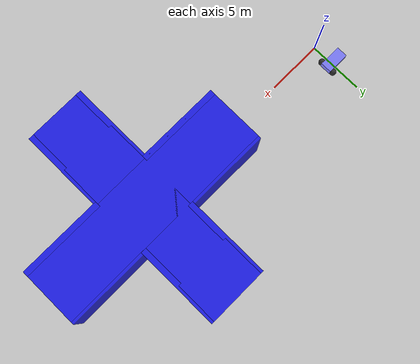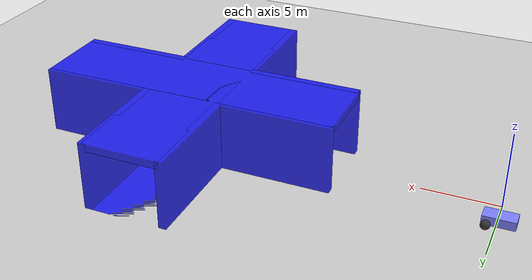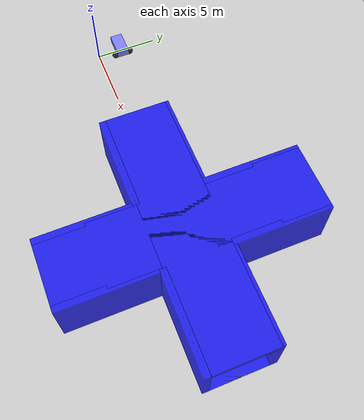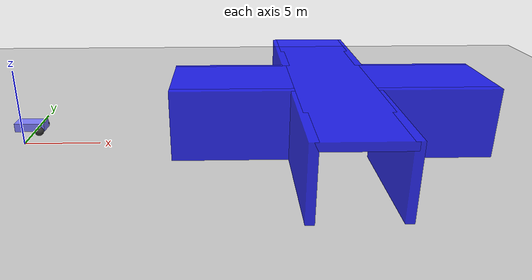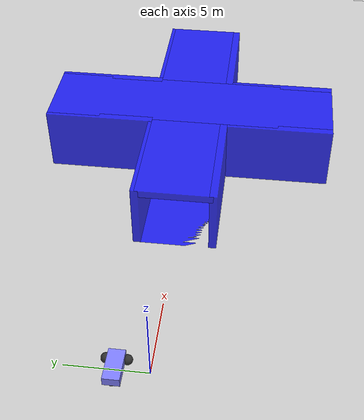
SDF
<sdf version="1.6">
 <world name="default">
  <model name="ground_plane">
   <static>true</static>
   <pose>30 0 0 0 0 0</pose>
   <link name="link">
    <collision name="collision">
     <pose>0 0 -5 0 0 0</pose>
     <geometry><box><size>100 100 10</size></box></geometry>
    </collision>
    <visual name="visual">
     <pose>0 0 -5 0 0 0</pose>
     <geometry><box><size>100 100 10</size></box></geometry>
     <material>
      <ambient>0.8 0.8 0.8 1</ambient>
      <diffuse>0.8 0.8 0.8 1</diffuse>
      <specular>0.8 0.8 0.8 1</specular>
      <emissive>0.8 0.8 0.8 1</emissive>
     </material>
    </visual>
   </link>
  </model>
  <model name="tunnel_tile_1_tile_2">
   <pose>20 0 0 0 0 -1.5707963267948966</pose>
   <static>true</static>
   <link name="link">
    <collision name="collision_0">
     <pose>0 0 -0.25 0 0 0</pose>
     <geometry><box><size>5 20 0.5</size></box></geometry>
    </collision>
    <visual name="visual_0">
     <pose>0 0 -0.25 0 0 0</pose>
     <geometry><box><size>5 20 0.5</size></box></geometry>
     <material><ambient>0 0 1 0.8</ambient><diffuse>0 0 1 0.8</diffuse><specular>1 1 1 0.8</specular></material>
    </visual>
    <collision name="collision_1">
     <pose>0 0 4.25 0 0 0</pose>
     <geometry><box><size>5 20 0.5</size></box></geometry>
    </collision>
    <visual name="visual_1">
     <pose>0 0 4.25 0 0 0</pose>
     <geometry><box><size>5 20 0.5</size></box></geometry>
     <material><ambient>0 0 1 0.8</ambient><diffuse>0 0 1 0.8</diffuse><specular>1 1 1 0.8</specular></material>
    </visual>
    <collision name="collision_2">
     <pose>0 0 -0.25 0 0 1.57</pose>
     <geometry><box><size>5 20 0.5</size></box></geometry>
    </collision>
    <visual name="visual_2">
     <pose>0 0 -0.25 0 0 1.57</pose>
     <geometry><box><size>5 20 0.5</size></box></geometry>
     <material><ambient>0 0 1 0.8</ambient><diffuse>0 0 1 0.8</diffuse><specular>1 1 1 0.8</specular></material>
    </visual>
    <collision name="collision_3">
     <pose>0 0 4.25 0 0 1.57</pose>
     <geometry><box><size>5 20 0.5</size></box></geometry>
    </collision>
    <visual name="visual_3">
     <pose>0 0 4.25 0 0 1.57</pose>
     <geometry><box><size>5 20 0.5</size></box></geometry>
     <material><ambient>0 0 1 0.8</ambient><diffuse>0 0 1 0.8</diffuse><specular>1 1 1 0.8</specular></material>
    </visual>
    <collision name="collision_4">
     <pose>-2.5 6.25 2 3.14 -1.57 0</pose>
     <geometry><box><size>5 7.5 0.5</size></box></geometry>
    </collision>
    <visual name="visual_4">
     <pose>-2.5 6.25 2 3.14 -1.57 0</pose>
     <geometry><box><size>5 7.5 0.5</size></box></geometry>
     <material><ambient>0 0 1 0.8</ambient><diffuse>0 0 1 0.8</diffuse><specular>1 1 1 0.8</specular></material>
    </visual>
    <collision name="collision_5">
     <pose>2.5 6.25 2 3.14 -1.57 0</pose>
     <geometry><box><size>5 7.5 0.5</size></box></geometry>
    </collision>
    <visual name="visual_5">
     <pose>2.5 6.25 2 3.14 -1.57 0</pose>
     <geometry><box><size>5 7.5 0.5</size></box></geometry>
     <material><ambient>0 0 1 0.8</ambient><diffuse>0 0 1 0.8</diffuse><specular>1 1 1 0.8</specular></material>
    </visual>
    <collision name="collision_6">
     <pose>-2.5 -6.25 2 3.14 -1.57 0</pose>
     <geometry><box><size>5 7.5 0.5</size></box></geometry>
    </collision>
    <visual name="visual_6">
     <pose>-2.5 -6.25 2 3.14 -1.57 0</pose>
     <geometry><box><size>5 7.5 0.5</size></box></geometry>
     <material><ambient>0 0 1 0.8</ambient><diffuse>0 0 1 0.8</diffuse><specular>1 1 1 0.8</specular></material>
    </visual>
    <collision name="collision_7">
     <pose>2.5 -6.25 2 3.14 -1.57 0</pose>
     <geometry><box><size>5 7.5 0.5</size></box></geometry>
    </collision>
    <visual name="visual_7">
     <pose>2.5 -6.25 2 3.14 -1.57 0</pose>
     <geometry><box><size>5 7.5 0.5</size></box></geometry>
     <material><ambient>0 0 1 0.8</ambient><diffuse>0 0 1 0.8</diffuse><specular>1 1 1 0.8</specular></material>
    </visual>
    <collision name="collision_8">
     <pose>6.25 2.5 2 1.57 1.57 0</pose>
     <geometry><box><size>5 7.5 0.5</size></box></geometry>
    </collision>
    <visual name="visual_8">
     <pose>6.25 2.5 2 1.57 1.57 0</pose>
     <geometry><box><size>5 7.5 0.5</size></box></geometry>
     <material><ambient>0 0 1 0.8</ambient><diffuse>0 0 1 0.8</diffuse><specular>1 1 1 0.8</specular></material>
    </visual>
    <collision name="collision_9">
     <pose>-6.25 2.5 2 1.57 1.57 0</pose>
     <geometry><box><size>5 7.5 0.5</size></box></geometry>
    </collision>
    <visual name="visual_9">
     <pose>-6.25 2.5 2 1.57 1.57 0</pose>
     <geometry><box><size>5 7.5 0.5</size></box></geometry>
     <material><ambient>0 0 1 0.8</ambient><diffuse>0 0 1 0.8</diffuse><specular>1 1 1 0.8</specular></material>
    </visual>
    <collision name="collision_10">
     <pose>6.25 -2.5 2 1.57 1.57 0</pose>
     <geometry><box><size>5 7.5 0.5</size></box></geometry>
    </collision>
    <visual name="visual_10">
     <pose>6.25 -2.5 2 1.57 1.57 0</pose>
     <geometry><box><size>5 7.5 0.5</size></box></geometry>
     <material><ambient>0 0 1 0.8</ambient><diffuse>0 0 1 0.8</diffuse><specular>1 1 1 0.8</specular></material>
    </visual>
    <collision name="collision_11">
     <pose>-6.25 -2.5 2 1.57 1.57 0</pose>
     <geometry><box><size>5 7.5 0.5</size></box></geometry>
    </collision>
    <visual name="visual_11">
     <pose>-6.25 -2.5 2 1.57 1.57 0</pose>
     <geometry><box><size>5 7.5 0.5</size></box></geometry>
     <material><ambient>0 0 1 0.8</ambient><diffuse>0 0 1 0.8</diffuse><specular>1 1 1 0.8</specular></material>
    </visual>
   </link>
  </model>
  <model name="vehicle_blue">
   <pose>0 2 0.325 0 0 0</pose>
   <link name="chassis">
    <pose>-0.151427 -0 0.175 0 -0 0</pose>
    <inertial>
     <mass>1.14395</mass>
     <inertia>
      <ixx>0.126164</ixx>
      <ixy>0</ixy>
      <ixz>0</ixz>
      <iyy>0.416519</iyy>
      <iyz>0</iyz>
      <izz>0.481014</izz>
     </inertia>
    </inertial>
    <visual name="visual">
     <geometry><box><size>2.01142 1 0.568726</size></box></geometry>
     <material>
      <ambient>0.5 0.5 1.0 1</ambient>
      <diffuse>0.5 0.5 1.0 1</diffuse>
      <specular>0.5 0.5 1.0 1</specular>
      <emissive>0.5 0.5 1.0 1</emissive>
     </material>
    </visual>
    <collision name="collision"><geometry><box><size>2.01142 1 0.568726</size></box></geometry></collision>
   </link>
   <link name="left_wheel">
    <pose>0.554283 0.625029 -0.025 -1.5707 0 0</pose>
    <inertial>
     <mass>2</mass>
     <inertia><ixx>0.145833</ixx><ixy>0</ixy><ixz>0</ixz><iyy>0.145833</iyy><iyz>0</iyz><izz>0.125</izz></inertia>
    </inertial>
    <visual name="visual">
     <geometry><sphere><radius>0.3</radius></sphere></geometry>
     <material>
      <ambient>0.2 0.2 0.2 1</ambient>
      <diffuse>0.2 0.2 0.2 1</diffuse>
      <specular>0.2 0.2 0.2 1</specular>
      <emissive>0.2 0.2 0.2 1</emissive>
     </material>
    </visual>
    <collision name="collision"><geometry><sphere><radius>0.3</radius></sphere></geometry></collision>
   </link>
   <link name="right_wheel">
    <pose>0.554282 -0.625029 -0.025 -1.5707 0 0</pose>
    <inertial>
     <mass>2</mass>
     <inertia><ixx>0.145833</ixx><ixy>0</ixy><ixz>0</ixz><iyy>0.145833</iyy><iyz>0</iyz><izz>0.125</izz></inertia>
    </inertial>
    <visual name="visual">
     <geometry><sphere><radius>0.3</radius></sphere></geometry>
     <material>
      <ambient>0.2 0.2 0.2 1</ambient>
      <diffuse>0.2 0.2 0.2 1</diffuse>
      <specular>0.2 0.2 0.2 1</specular>
      <emissive>0.2 0.2 0.2 1</emissive>
     </material>
    </visual>
    <collision name="collision"><geometry><sphere><radius>0.3</radius></sphere></geometry></collision>
   </link>
   <link name="caster">
    <pose>-0.957138 -0 -0.125 0 -0 0</pose>
    <inertial>
     <mass>1</mass>
     <inertia><ixx>0.1</ixx><ixy>0</ixy><ixz>0</ixz><iyy>0.1</iyy><iyz>0</iyz><izz>0.1</izz></inertia>
    </inertial>
    <visual name="visual">
     <geometry><sphere><radius>0.2</radius></sphere></geometry>
     <material>
      <ambient>0.2 0.2 0.2 1</ambient>
      <diffuse>0.2 0.2 0.2 1</diffuse>
      <specular>0.2 0.2 0.2 1</specular>
      <emissive>0.2 0.2 0.2 1</emissive>
     </material>
    </visual>
    <collision name="collision"><geometry><sphere><radius>0.2</radius></sphere></geometry></collision>
   </link>
   <joint name="left_wheel_joint" type="revolute">
    <parent>chassis</parent>
    <child>left_wheel</child>
    <axis><xyz>0 0 1</xyz><limit><lower>-1.79769e+308</lower><upper>1.79769e+308</upper></limit></axis>
   </joint>
   <joint name="right_wheel_joint" type="revolute">
    <parent>chassis</parent>
    <child>right_wheel</child>
    <axis><xyz>0 0 1</xyz><limit><lower>-1.79769e+308</lower><upper>1.79769e+308</upper></limit></axis>
   </joint>
   <joint name="caster_wheel" type="ball"><parent>chassis</parent><child>caster</child></joint>
   <plugin filename="libignition-gazebo-systems.so" name="ignition::gazebo::systems::v0::DiffDrive">
    <left_joint>left_wheel_joint</left_joint>
    <right_joint>right_wheel_joint</right_joint>
    <wheel_separation>1.25</wheel_separation>
    <wheel_radius>0.3</wheel_radius>
   </plugin>
  </model>
 </world>
</sdf>
